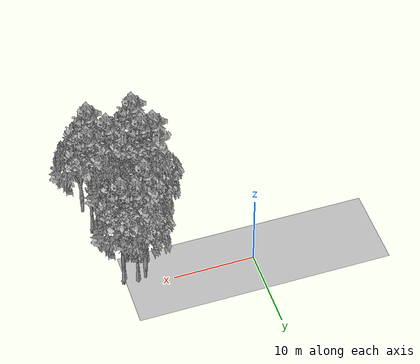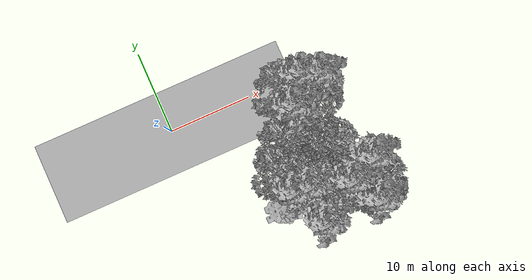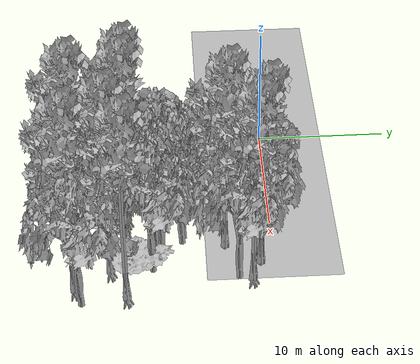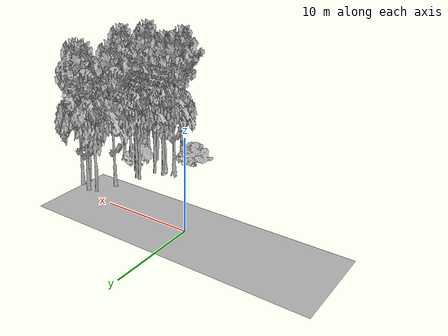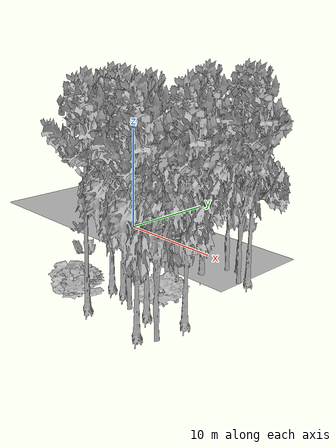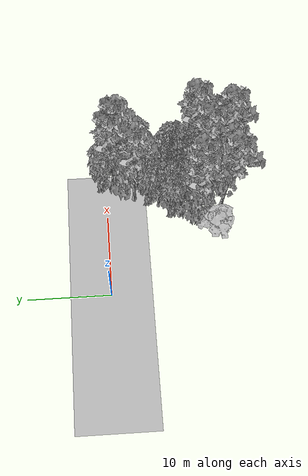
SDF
<sdf version="1.7">
 <world name="default">
  <model name="ground_plane">
   <static>1</static>
   <link name="link">
    <collision name="collision">
     <pose>-50 0 0 0 -0 0</pose>
     <geometry><plane><normal>0 0 1</normal><size>100 100</size></plane></geometry>
     <surface><contact><ode><min_depth>0.01</min_depth><max_vel>0</max_vel></ode></contact></surface>
    </collision>
    <visual name="grass">
     <cast_shadows>0</cast_shadows>
     <geometry>
      <mesh>
       <scale>0.5814285714285714 0.18142857142857144 0.1</scale>
       <uri>file://grass_plane/meshes/grass_plane.dae</uri>
      </mesh>
     </geometry>
    </visual>
   </link>
  </model>
  <model name="Tree 9">
   <static>1</static>
   <pose>15.429976537966382 -2.6154416032176186 0 1.57079 -0 0</pose>
   <link name="link">
    <collision name="collision">
     <geometry><mesh><scale>3.5 5 3.5</scale><uri>model://tree_2/meshes/tree_2.obj</uri></mesh></geometry>
    </collision>
    <visual name="visual">
     <geometry><mesh><scale>3.5 5 3.5</scale><uri>model://tree_2/meshes/tree_2.obj</uri></mesh></geometry>
    </visual>
   </link>
  </model>
  <model name="Tree 71">
   <static>1</static>
   <pose>14.173808272994691 -0.9753781231328738 0 1.57079 -0 0</pose>
   <link name="link">
    <collision name="collision">
     <geometry><mesh><scale>3.5 5 3.5</scale><uri>model://tree_9/meshes/tree_9.obj</uri></mesh></geometry>
    </collision>
    <visual name="visual">
     <geometry><mesh><scale>3.5 5 3.5</scale><uri>model://tree_9/meshes/tree_9.obj</uri></mesh></geometry>
    </visual>
   </link>
  </model>
  <model name="Tree 90">
   <static>1</static>
   <pose>9.591382217484941 -8.965406489877036 0 1.57079 -0 0</pose>
   <link name="link">
    <collision name="collision">
     <geometry><mesh><scale>3.5 5 3.5</scale><uri>model://tree_2/meshes/tree_2.obj</uri></mesh></geometry>
    </collision>
    <visual name="visual">
     <geometry><mesh><scale>3.5 5 3.5</scale><uri>model://tree_2/meshes/tree_2.obj</uri></mesh></geometry>
    </visual>
   </link>
  </model>
  <model name="Tree 92">
   <static>1</static>
   <pose>15.712176317912991 -1.6340702865891679 0 1.57079 -0 0</pose>
   <link name="link">
    <collision name="collision">
     <geometry><mesh><scale>3.5 5 3.5</scale><uri>model://tree_9/meshes/tree_9.obj</uri></mesh></geometry>
    </collision>
    <visual name="visual">
     <geometry><mesh><scale>3.5 5 3.5</scale><uri>model://tree_9/meshes/tree_9.obj</uri></mesh></geometry>
    </visual>
   </link>
  </model>
  <model name="Tree 100">
   <static>1</static>
   <pose>13.940424867970961 -9.70459331097179 0 1.57079 -0 0</pose>
   <link name="link">
    <collision name="collision">
     <geometry><mesh><scale>4 2.5 4</scale><uri>model://tree_1/meshes/tree_1.obj</uri></mesh></geometry>
    </collision>
    <visual name="visual">
     <geometry><mesh><scale>4 2.5 4</scale><uri>model://tree_1/meshes/tree_1.obj</uri></mesh></geometry>
    </visual>
   </link>
  </model>
  <model name="Tree 140">
   <static>1</static>
   <pose>11.673367594097627 -6.588647880897975 0 1.57079 -0 0</pose>
   <link name="link">
    <collision name="collision">
     <geometry><mesh><scale>3.5 5 3.5</scale><uri>model://tree_2/meshes/tree_2.obj</uri></mesh></geometry>
    </collision>
    <visual name="visual">
     <geometry><mesh><scale>3.5 5 3.5</scale><uri>model://tree_2/meshes/tree_2.obj</uri></mesh></geometry>
    </visual>
   </link>
  </model>
  <model name="Tree 239">
   <static>1</static>
   <pose>17.161488333700106 -10.566756123373793 0 1.57079 -0 0</pose>
   <link name="link">
    <collision name="collision">
     <geometry><mesh><scale>3.5 5 3.5</scale><uri>model://tree_9/meshes/tree_9.obj</uri></mesh></geometry>
    </collision>
    <visual name="visual">
     <geometry><mesh><scale>3.5 5 3.5</scale><uri>model://tree_9/meshes/tree_9.obj</uri></mesh></geometry>
    </visual>
   </link>
  </model>
  <model name="Tree 246">
   <static>1</static>
   <pose>10.768084523051016 -8.890545340311416 0 1.57079 -0 0</pose>
   <link name="link">
    <collision name="collision">
     <geometry><mesh><scale>3.5 5 3.5</scale><uri>model://tree_2/meshes/tree_2.obj</uri></mesh></geometry>
    </collision>
    <visual name="visual">
     <geometry><mesh><scale>3.5 5 3.5</scale><uri>model://tree_2/meshes/tree_2.obj</uri></mesh></geometry>
    </visual>
   </link>
  </model>
  <model name="Tree 285">
   <static>1</static>
   <pose>12.90527997356132 -12.062756800091528 0 1.57079 -0 0</pose>
   <link name="link">
    <collision name="collision">
     <geometry><mesh><scale>3.5 5 3.5</scale><uri>model://tree_2/meshes/tree_2.obj</uri></mesh></geometry>
    </collision>
    <visual name="visual">
     <geometry><mesh><scale>3.5 5 3.5</scale><uri>model://tree_2/meshes/tree_2.obj</uri></mesh></geometry>
    </visual>
   </link>
  </model>
  <model name="Tree 290">
   <static>1</static>
   <pose>16.196416708347854 -14.2462535834429 0 1.57079 -0 0</pose>
   <link name="link">
    <collision name="collision">
     <geometry><mesh><scale>3.5 5 3.5</scale><uri>model://tree_9/meshes/tree_9.obj</uri></mesh></geometry>
    </collision>
    <visual name="visual">
     <geometry><mesh><scale>3.5 5 3.5</scale><uri>model://tree_9/meshes/tree_9.obj</uri></mesh></geometry>
    </visual>
   </link>
  </model>
  <model name="Tree 327">
   <static>1</static>
   <pose>13.106031001271319 -1.2654499792575464 0 1.57079 -0 0</pose>
   <link name="link">
    <collision name="collision">
     <geometry><mesh><scale>3.5 5 3.5</scale><uri>model://tree_2/meshes/tree_2.obj</uri></mesh></geometry>
    </collision>
    <visual name="visual">
     <geometry><mesh><scale>3.5 5 3.5</scale><uri>model://tree_2/meshes/tree_2.obj</uri></mesh></geometry>
    </visual>
   </link>
  </model>
  <model name="Tree 340">
   <static>1</static>
   <pose>14.49901478270214 -11.734823809953728 0 1.57079 -0 0</pose>
   <link name="link">
    <collision name="collision">
     <geometry><mesh><scale>3.5 5 3.5</scale><uri>model://tree_9/meshes/tree_9.obj</uri></mesh></geometry>
    </collision>
    <visual name="visual">
     <geometry><mesh><scale>3.5 5 3.5</scale><uri>model://tree_9/meshes/tree_9.obj</uri></mesh></geometry>
    </visual>
   </link>
  </model>
  <model name="Tree 381">
   <static>1</static>
   <pose>14.438649605107962 -8.746339153708629 0 1.57079 -0 0</pose>
   <link name="link">
    <collision name="collision">
     <geometry><mesh><scale>3.5 5 3.5</scale><uri>model://tree_2/meshes/tree_2.obj</uri></mesh></geometry>
    </collision>
    <visual name="visual">
     <geometry><mesh><scale>3.5 5 3.5</scale><uri>model://tree_2/meshes/tree_2.obj</uri></mesh></geometry>
    </visual>
   </link>
  </model>
  <model name="Tree 384">
   <static>1</static>
   <pose>11.158933929121766 -6.471752467491903 0 1.57079 -0 0</pose>
   <link name="link">
    <collision name="collision">
     <geometry><mesh><scale>3.5 5 3.5</scale><uri>model://tree_2/meshes/tree_2.obj</uri></mesh></geometry>
    </collision>
    <visual name="visual">
     <geometry><mesh><scale>3.5 5 3.5</scale><uri>model://tree_2/meshes/tree_2.obj</uri></mesh></geometry>
    </visual>
   </link>
  </model>
  <model name="Tree 387">
   <static>1</static>
   <pose>13.180808899729229 -8.40581299655966 0 1.57079 -0 0</pose>
   <link name="link">
    <collision name="collision">
     <geometry><mesh><scale>3.5 5 3.5</scale><uri>model://tree_2/meshes/tree_2.obj</uri></mesh></geometry>
    </collision>
    <visual name="visual">
     <geometry><mesh><scale>3.5 5 3.5</scale><uri>model://tree_2/meshes/tree_2.obj</uri></mesh></geometry>
    </visual>
   </link>
  </model>
  <model name="Tree 392">
   <static>1</static>
   <pose>12.348624868848468 -3.4638602791829793 0 1.57079 -0 0</pose>
   <link name="link">
    <collision name="collision">
     <geometry><mesh><scale>3.5 5 3.5</scale><uri>model://tree_9/meshes/tree_9.obj</uri></mesh></geometry>
    </collision>
    <visual name="visual">
     <geometry><mesh><scale>3.5 5 3.5</scale><uri>model://tree_9/meshes/tree_9.obj</uri></mesh></geometry>
    </visual>
   </link>
  </model>
  <model name="Tree 397">
   <static>1</static>
   <pose>8.381812951036224 -13.852998160741247 0 1.57079 -0 0</pose>
   <link name="link">
    <collision name="collision">
     <geometry><mesh><scale>3 2 3</scale><uri>model://tree_3/meshes/tree_3.obj</uri></mesh></geometry>
    </collision>
    <visual name="visual">
     <geometry><mesh><scale>3 2 3</scale><uri>model://tree_3/meshes/tree_3.obj</uri></mesh></geometry>
    </visual>
   </link>
  </model>
  <model name="Tree 410">
   <static>1</static>
   <pose>9.214502276485234 -10.547795610652004 0 1.57079 -0 0</pose>
   <link name="link">
    <collision name="collision">
     <geometry><mesh><scale>3.5 5 3.5</scale><uri>model://tree_9/meshes/tree_9.obj</uri></mesh></geometry>
    </collision>
    <visual name="visual">
     <geometry><mesh><scale>3.5 5 3.5</scale><uri>model://tree_9/meshes/tree_9.obj</uri></mesh></geometry>
    </visual>
   </link>
  </model>
  <model name="Tree 448">
   <static>1</static>
   <pose>10.744407129121058 -14.204500143933933 0 1.57079 -0 0</pose>
   <link name="link">
    <collision name="collision">
     <geometry><mesh><scale>3.5 5 3.5</scale><uri>model://tree_9/meshes/tree_9.obj</uri></mesh></geometry>
    </collision>
    <visual name="visual">
     <geometry><mesh><scale>3.5 5 3.5</scale><uri>model://tree_9/meshes/tree_9.obj</uri></mesh></geometry>
    </visual>
   </link>
  </model>
  <model name="Tree 453">
   <static>1</static>
   <pose>8.394961587044634 -13.431683652475357 0 1.57079 -0 0</pose>
   <link name="link">
    <collision name="collision">
     <geometry><mesh><scale>4 2.5 4</scale><uri>model://tree_1/meshes/tree_1.obj</uri></mesh></geometry>
    </collision>
    <visual name="visual">
     <geometry><mesh><scale>4 2.5 4</scale><uri>model://tree_1/meshes/tree_1.obj</uri></mesh></geometry>
    </visual>
   </link>
  </model>
  <model name="Tree 458">
   <static>1</static>
   <pose>10.648568790626165 -10.622659307012285 0 1.57079 -0 0</pose>
   <link name="link">
    <collision name="collision">
     <geometry><mesh><scale>3.5 5 3.5</scale><uri>model://tree_9/meshes/tree_9.obj</uri></mesh></geometry>
    </collision>
    <visual name="visual">
     <geometry><mesh><scale>3.5 5 3.5</scale><uri>model://tree_9/meshes/tree_9.obj</uri></mesh></geometry>
    </visual>
   </link>
  </model>
  <model name="Tree 488">
   <static>1</static>
   <pose>17.512482321100507 -13.752456291617147 0 1.57079 -0 0</pose>
   <link name="link">
    <collision name="collision">
     <geometry><mesh><scale>3.5 5 3.5</scale><uri>model://tree_2/meshes/tree_2.obj</uri></mesh></geometry>
    </collision>
    <visual name="visual">
     <geometry><mesh><scale>3.5 5 3.5</scale><uri>model://tree_2/meshes/tree_2.obj</uri></mesh></geometry>
    </visual>
   </link>
  </model>
  <model name="Tree 505">
   <static>1</static>
   <pose>13.059946140650432 -8.034323753315208 0 1.57079 -0 0</pose>
   <link name="link">
    <collision name="collision">
     <geometry><mesh><scale>3.5 5 3.5</scale><uri>model://tree_2/meshes/tree_2.obj</uri></mesh></geometry>
    </collision>
    <visual name="visual">
     <geometry><mesh><scale>3.5 5 3.5</scale><uri>model://tree_2/meshes/tree_2.obj</uri></mesh></geometry>
    </visual>
   </link>
  </model>
 </world>
</sdf>
